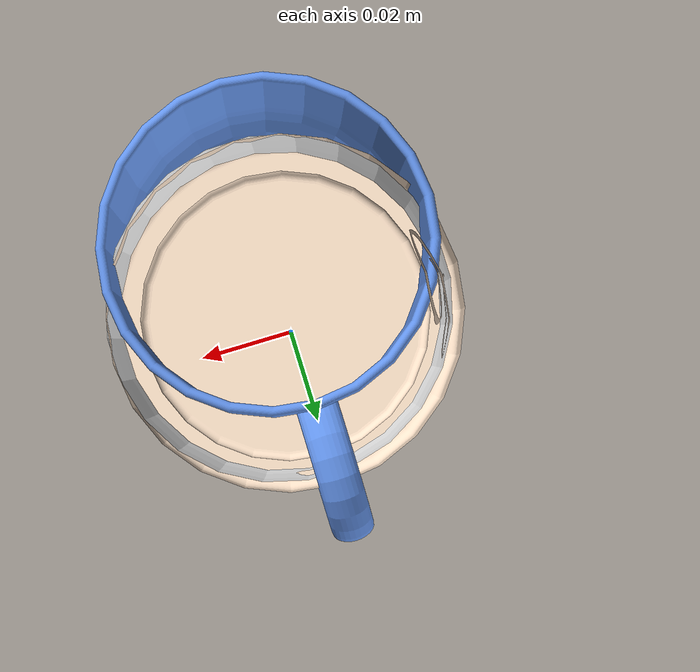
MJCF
<mujoco model="d75af64a">
  <asset>
  <texture file="../../../textures/ceramic.png" name="tex-d75af64a" type="2d" />
  <material name="d75af64a" reflectance="0.5" texrepeat="1 1" texture="tex-d75af64a" texuniform="false" />
  <mesh file="visual/model_normalized_0.obj" name="model_normalized_0_vis" scale="0.15 0.15 0.15" /><mesh file="visual/model_normalized_1.obj" name="model_normalized_1_vis" scale="0.15 0.15 0.15" /><mesh file="visual/model_normalized_2.obj" name="model_normalized_2_vis" scale="0.15 0.15 0.15" /><mesh file="visual/model_normalized_3.obj" name="model_normalized_3_vis" scale="0.15 0.15 0.15" /><mesh file="collision/model_normalized_collision_13.obj" name="model_normalized_collision_13._coll" scale="0.15 0.15 0.15" /><mesh file="collision/model_normalized_collision_16.obj" name="model_normalized_collision_16._coll" scale="0.15 0.15 0.15" /><mesh file="collision/model_normalized_collision_30.obj" name="model_normalized_collision_30._coll" scale="0.15 0.15 0.15" /><mesh file="collision/model_normalized_collision_21.obj" name="model_normalized_collision_21._coll" scale="0.15 0.15 0.15" /><mesh file="collision/model_normalized_collision_1.obj" name="model_normalized_collision_1._coll" scale="0.15 0.15 0.15" /><mesh file="collision/model_normalized_collision_20.obj" name="model_normalized_collision_20._coll" scale="0.15 0.15 0.15" /><mesh file="collision/model_normalized_collision_27.obj" name="model_normalized_collision_27._coll" scale="0.15 0.15 0.15" /><mesh file="collision/model_normalized_collision_10.obj" name="model_normalized_collision_10._coll" scale="0.15 0.15 0.15" /><mesh file="collision/model_normalized_collision_24.obj" name="model_normalized_collision_24._coll" scale="0.15 0.15 0.15" /><mesh file="collision/model_normalized_collision_28.obj" name="model_normalized_collision_28._coll" scale="0.15 0.15 0.15" /><mesh file="collision/model_normalized_collision_25.obj" name="model_normalized_collision_25._coll" scale="0.15 0.15 0.15" /><mesh file="collision/model_normalized_collision_23.obj" name="model_normalized_collision_23._coll" scale="0.15 0.15 0.15" /><mesh file="collision/model_normalized_collision_6.obj" name="model_normalized_collision_6._coll" scale="0.15 0.15 0.15" /><mesh file="collision/model_normalized_collision_8.obj" name="model_normalized_collision_8._coll" scale="0.15 0.15 0.15" /><mesh file="collision/model_normalized_collision_2.obj" name="model_normalized_collision_2._coll" scale="0.15 0.15 0.15" /><mesh file="collision/model_normalized_collision_12.obj" name="model_normalized_collision_12._coll" scale="0.15 0.15 0.15" /><mesh file="collision/model_normalized_collision_4.obj" name="model_normalized_collision_4._coll" scale="0.15 0.15 0.15" /><mesh file="collision/model_normalized_collision_19.obj" name="model_normalized_collision_19._coll" scale="0.15 0.15 0.15" /><mesh file="collision/model_normalized_collision_5.obj" name="model_normalized_collision_5._coll" scale="0.15 0.15 0.15" /><mesh file="collision/model_normalized_collision_14.obj" name="model_normalized_collision_14._coll" scale="0.15 0.15 0.15" /><mesh file="collision/model_normalized_collision_11.obj" name="model_normalized_collision_11._coll" scale="0.15 0.15 0.15" /><mesh file="collision/model_normalized_collision_15.obj" name="model_normalized_collision_15._coll" scale="0.15 0.15 0.15" /><mesh file="collision/model_normalized_collision_18.obj" name="model_normalized_collision_18._coll" scale="0.15 0.15 0.15" /><mesh file="collision/model_normalized_collision_29.obj" name="model_normalized_collision_29._coll" scale="0.15 0.15 0.15" /><mesh file="collision/model_normalized_collision_26.obj" name="model_normalized_collision_26._coll" scale="0.15 0.15 0.15" /><mesh file="collision/model_normalized_collision_17.obj" name="model_normalized_collision_17._coll" scale="0.15 0.15 0.15" /><mesh file="collision/model_normalized_collision_31.obj" name="model_normalized_collision_31._coll" scale="0.15 0.15 0.15" /><mesh file="collision/model_normalized_collision_3.obj" name="model_normalized_collision_3._coll" scale="0.15 0.15 0.15" /><mesh file="collision/model_normalized_collision_9.obj" name="model_normalized_collision_9._coll" scale="0.15 0.15 0.15" /><mesh file="collision/model_normalized_collision_22.obj" name="model_normalized_collision_22._coll" scale="0.15 0.15 0.15" /><mesh file="collision/model_normalized_collision_7.obj" name="model_normalized_collision_7._coll" scale="0.15 0.15 0.15" /><mesh file="collision/model_normalized_collision_0.obj" name="model_normalized_collision_0._coll" scale="0.15 0.15 0.15" /><material name="material_0_24" specular="0.4000000000000001" shininess="0.01" rgba="1 0.898039 0.8 1.0" /><material name="material_1_24" specular="0.4000000000000001" shininess="0.01" rgba="0.392157 0.584314 0.929412 1.0" /><material name="material_2_24" specular="0.4000000000000001" shininess="0.01" rgba="1 1 1 1.0" /><material name="material_3_24" specular="0.4000000000000001" shininess="0.01" rgba="0.8 0.717647 0.639216 1.0" /></asset>
  <worldbody>
    <body>
      <body name="object">
      <geom solimp="0.998 0.998 0.001" solref="0.001 1" density="100" friction="0.95 0.3 0.1" type="mesh" mesh="model_normalized_0_vis" conaffinity="0" contype="0" group="1" material="material_3_24" /><geom solimp="0.998 0.998 0.001" solref="0.001 1" density="100" friction="0.95 0.3 0.1" type="mesh" mesh="model_normalized_1_vis" conaffinity="0" contype="0" group="1" material="material_2_24" /><geom solimp="0.998 0.998 0.001" solref="0.001 1" density="100" friction="0.95 0.3 0.1" type="mesh" mesh="model_normalized_2_vis" conaffinity="0" contype="0" group="1" material="material_1_24" /><geom solimp="0.998 0.998 0.001" solref="0.001 1" density="100" friction="0.95 0.3 0.1" type="mesh" mesh="model_normalized_3_vis" conaffinity="0" contype="0" group="1" material="material_0_24" /><geom solimp="0.998 0.998 0.001" solref="0.001 1" density="100" friction="0.95 0.3 0.1" type="mesh" mesh="model_normalized_collision_13._coll" group="0" rgba="0.8 0.8 0.8 0.0" /><geom solimp="0.998 0.998 0.001" solref="0.001 1" density="100" friction="0.95 0.3 0.1" type="mesh" mesh="model_normalized_collision_16._coll" group="0" rgba="0.8 0.8 0.8 0.0" /><geom solimp="0.998 0.998 0.001" solref="0.001 1" density="100" friction="0.95 0.3 0.1" type="mesh" mesh="model_normalized_collision_30._coll" group="0" rgba="0.8 0.8 0.8 0.0" /><geom solimp="0.998 0.998 0.001" solref="0.001 1" density="100" friction="0.95 0.3 0.1" type="mesh" mesh="model_normalized_collision_21._coll" group="0" rgba="0.8 0.8 0.8 0.0" /><geom solimp="0.998 0.998 0.001" solref="0.001 1" density="100" friction="0.95 0.3 0.1" type="mesh" mesh="model_normalized_collision_1._coll" group="0" rgba="0.8 0.8 0.8 0.0" /><geom solimp="0.998 0.998 0.001" solref="0.001 1" density="100" friction="0.95 0.3 0.1" type="mesh" mesh="model_normalized_collision_20._coll" group="0" rgba="0.8 0.8 0.8 0.0" /><geom solimp="0.998 0.998 0.001" solref="0.001 1" density="100" friction="0.95 0.3 0.1" type="mesh" mesh="model_normalized_collision_27._coll" group="0" rgba="0.8 0.8 0.8 0.0" /><geom solimp="0.998 0.998 0.001" solref="0.001 1" density="100" friction="0.95 0.3 0.1" type="mesh" mesh="model_normalized_collision_10._coll" group="0" rgba="0.8 0.8 0.8 0.0" /><geom solimp="0.998 0.998 0.001" solref="0.001 1" density="100" friction="0.95 0.3 0.1" type="mesh" mesh="model_normalized_collision_24._coll" group="0" rgba="0.8 0.8 0.8 0.0" /><geom solimp="0.998 0.998 0.001" solref="0.001 1" density="100" friction="0.95 0.3 0.1" type="mesh" mesh="model_normalized_collision_28._coll" group="0" rgba="0.8 0.8 0.8 0.0" /><geom solimp="0.998 0.998 0.001" solref="0.001 1" density="100" friction="0.95 0.3 0.1" type="mesh" mesh="model_normalized_collision_25._coll" group="0" rgba="0.8 0.8 0.8 0.0" /><geom solimp="0.998 0.998 0.001" solref="0.001 1" density="100" friction="0.95 0.3 0.1" type="mesh" mesh="model_normalized_collision_23._coll" group="0" rgba="0.8 0.8 0.8 0.0" /><geom solimp="0.998 0.998 0.001" solref="0.001 1" density="100" friction="0.95 0.3 0.1" type="mesh" mesh="model_normalized_collision_6._coll" group="0" rgba="0.8 0.8 0.8 0.0" /><geom solimp="0.998 0.998 0.001" solref="0.001 1" density="100" friction="0.95 0.3 0.1" type="mesh" mesh="model_normalized_collision_8._coll" group="0" rgba="0.8 0.8 0.8 0.0" /><geom solimp="0.998 0.998 0.001" solref="0.001 1" density="100" friction="0.95 0.3 0.1" type="mesh" mesh="model_normalized_collision_2._coll" group="0" rgba="0.8 0.8 0.8 0.0" /><geom solimp="0.998 0.998 0.001" solref="0.001 1" density="100" friction="0.95 0.3 0.1" type="mesh" mesh="model_normalized_collision_12._coll" group="0" rgba="0.8 0.8 0.8 0.0" /><geom solimp="0.998 0.998 0.001" solref="0.001 1" density="100" friction="0.95 0.3 0.1" type="mesh" mesh="model_normalized_collision_4._coll" group="0" rgba="0.8 0.8 0.8 0.0" /><geom solimp="0.998 0.998 0.001" solref="0.001 1" density="100" friction="0.95 0.3 0.1" type="mesh" mesh="model_normalized_collision_19._coll" group="0" rgba="0.8 0.8 0.8 0.0" /><geom solimp="0.998 0.998 0.001" solref="0.001 1" density="100" friction="0.95 0.3 0.1" type="mesh" mesh="model_normalized_collision_5._coll" group="0" rgba="0.8 0.8 0.8 0.0" /><geom solimp="0.998 0.998 0.001" solref="0.001 1" density="100" friction="0.95 0.3 0.1" type="mesh" mesh="model_normalized_collision_14._coll" group="0" rgba="0.8 0.8 0.8 0.0" /><geom solimp="0.998 0.998 0.001" solref="0.001 1" density="100" friction="0.95 0.3 0.1" type="mesh" mesh="model_normalized_collision_11._coll" group="0" rgba="0.8 0.8 0.8 0.0" /><geom solimp="0.998 0.998 0.001" solref="0.001 1" density="100" friction="0.95 0.3 0.1" type="mesh" mesh="model_normalized_collision_15._coll" group="0" rgba="0.8 0.8 0.8 0.0" /><geom solimp="0.998 0.998 0.001" solref="0.001 1" density="100" friction="0.95 0.3 0.1" type="mesh" mesh="model_normalized_collision_18._coll" group="0" rgba="0.8 0.8 0.8 0.0" /><geom solimp="0.998 0.998 0.001" solref="0.001 1" density="100" friction="0.95 0.3 0.1" type="mesh" mesh="model_normalized_collision_29._coll" group="0" rgba="0.8 0.8 0.8 0.0" /><geom solimp="0.998 0.998 0.001" solref="0.001 1" density="100" friction="0.95 0.3 0.1" type="mesh" mesh="model_normalized_collision_26._coll" group="0" rgba="0.8 0.8 0.8 0.0" /><geom solimp="0.998 0.998 0.001" solref="0.001 1" density="100" friction="0.95 0.3 0.1" type="mesh" mesh="model_normalized_collision_17._coll" group="0" rgba="0.8 0.8 0.8 0.0" /><geom solimp="0.998 0.998 0.001" solref="0.001 1" density="100" friction="0.95 0.3 0.1" type="mesh" mesh="model_normalized_collision_31._coll" group="0" rgba="0.8 0.8 0.8 0.0" /><geom solimp="0.998 0.998 0.001" solref="0.001 1" density="100" friction="0.95 0.3 0.1" type="mesh" mesh="model_normalized_collision_3._coll" group="0" rgba="0.8 0.8 0.8 0.0" /><geom solimp="0.998 0.998 0.001" solref="0.001 1" density="100" friction="0.95 0.3 0.1" type="mesh" mesh="model_normalized_collision_9._coll" group="0" rgba="0.8 0.8 0.8 0.0" /><geom solimp="0.998 0.998 0.001" solref="0.001 1" density="100" friction="0.95 0.3 0.1" type="mesh" mesh="model_normalized_collision_22._coll" group="0" rgba="0.8 0.8 0.8 0.0" /><geom solimp="0.998 0.998 0.001" solref="0.001 1" density="100" friction="0.95 0.3 0.1" type="mesh" mesh="model_normalized_collision_7._coll" group="0" rgba="0.8 0.8 0.8 0.0" /><geom solimp="0.998 0.998 0.001" solref="0.001 1" density="100" friction="0.95 0.3 0.1" type="mesh" mesh="model_normalized_collision_0._coll" group="0" rgba="0.8 0.8 0.8 0.0" /></body>
      <site rgba="0 0 0 0" size="0.005" pos="7.645087499999828e-05 -0.003941478599999999 -0.0439014003" name="bottom_site" />
      <site rgba="0 0 0 0" size="0.005" pos="7.645087499999828e-05 -0.003941478599999999 0.049813351049999996" name="top_site" />
      <site rgba="0 0 0 0" size="0.005" pos="0.0348213465 0.04221434819999999 0.002955975375" name="horizontal_radius_site" />
    </body>
  </worldbody>
</mujoco>
